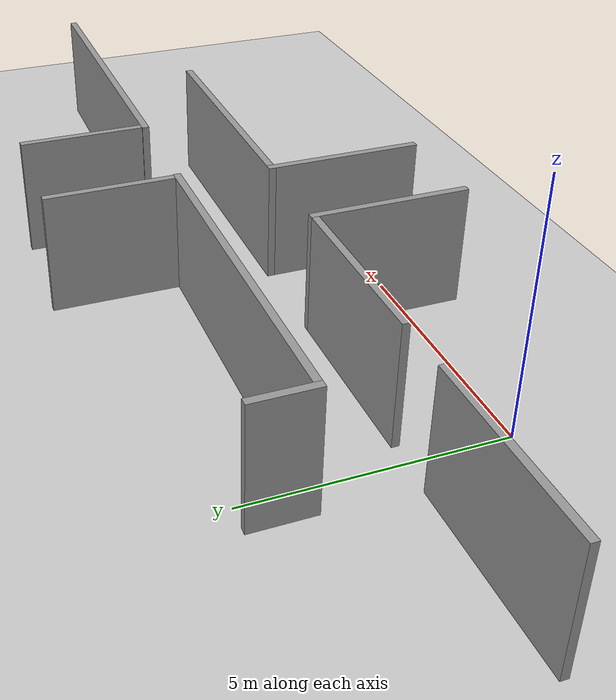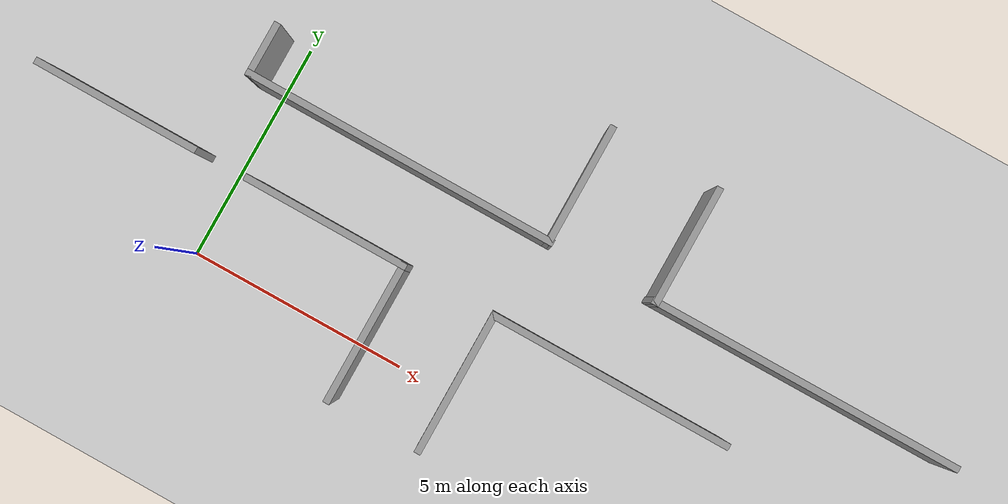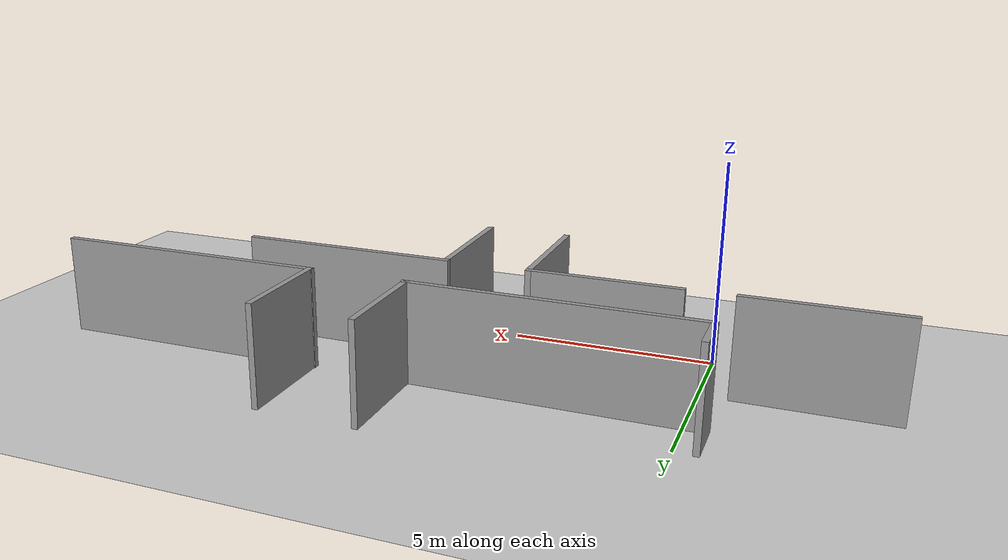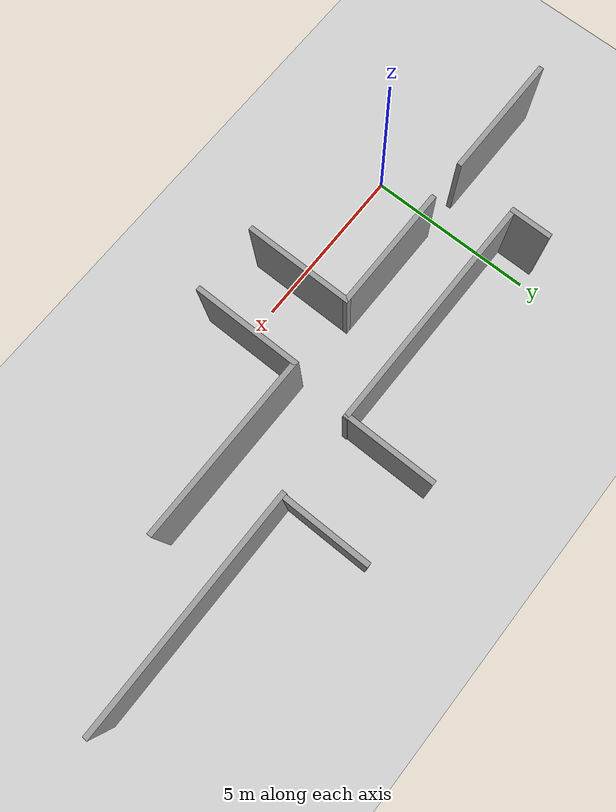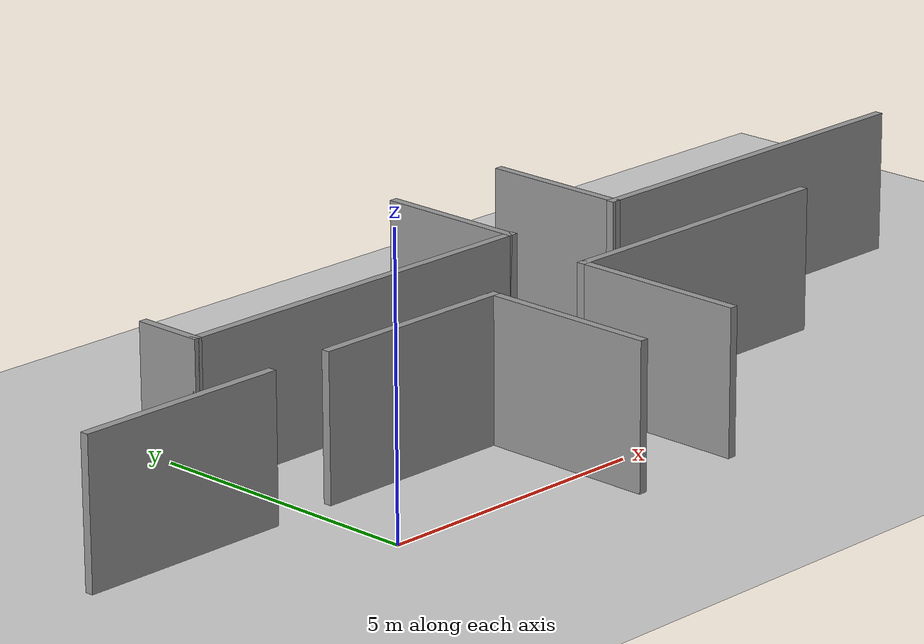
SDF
<sdf version="1.6">
 <world name="default">
  <light name="sun" type="directional">
   <pose>0 0 10 0 -0 0</pose>
   <diffuse>0.8 0.8 0.8 1</diffuse>
   <specular>0.2 0.2 0.2 1</specular>
   <attenuation>
    <range>1000</range>
    <constant>0.9</constant>
    <linear>0.01</linear>
    <quadratic>0.001</quadratic>
   </attenuation>
   <direction>-0.5 0.1 -0.9</direction>
  </light>
  <model name="ground_plane">
   <static>1</static>
   <link name="link">
    <collision name="collision">
     <geometry><plane><normal>0 0 1</normal><size>100 100</size></plane></geometry>
     <surface>
      <contact><collide_bitmask>65535</collide_bitmask></contact>
      <friction><ode><mu>100</mu><mu2>50</mu2></ode></friction>
     </surface>
    </collision>
    <visual name="visual">
     <cast_shadows>0</cast_shadows>
     <geometry><plane><normal>0 0 1</normal><size>100 100</size></plane></geometry>
     <material>
      <script><uri>file://media/materials/scripts/gazebo.material</uri><name>Gazebo/Grey</name></script>
     </material>
    </visual>
   </link>
  </model>
  <gravity>0 0 -9.8</gravity>
  <magnetic_field>6e-06 2.3e-05 -4.2e-05</magnetic_field>
  <atmosphere type="adiabatic"/>
  <physics name="default_physics" default="0" type="ode">
   <max_step_size>0.001</max_step_size>
   <real_time_factor>1</real_time_factor>
   <real_time_update_rate>1000</real_time_update_rate>
  </physics>
  <scene><ambient>0.4 0.4 0.4 1</ambient><background>0.7 0.7 0.7 1</background><shadows>1</shadows></scene>
  <spherical_coordinates>
   <surface_model>EARTH_WGS84</surface_model>
   <latitude_deg>0</latitude_deg>
   <longitude_deg>0</longitude_deg>
   <elevation>0</elevation>
   <heading_deg>0</heading_deg>
  </spherical_coordinates>
  <model name="Untitled">
   <pose>5.73486 2.64635 0 0 -0 0</pose>
   <link name="Wall_0">
    <collision name="Wall_0_Collision">
     <geometry><box><size>3.25 0.15 2.5</size></box></geometry>
     <pose>0 0 1.25 0 -0 0</pose>
    </collision>
    <visual name="Wall_0_Visual">
     <pose>0 0 1.25 0 -0 0</pose>
     <geometry><box><size>3.25 0.15 2.5</size></box></geometry>
     <material>
      <script><uri>file://media/materials/scripts/gazebo.material</uri><name>Gazebo/Grey</name></script>
      <ambient>1 1 1 1</ambient>
     </material>
     <meta><layer>0</layer></meta>
    </visual>
    <pose>-1.61396 -2.23502 0 0 -0 1.5708</pose>
   </link>
   <link name="Wall_11">
    <collision name="Wall_11_Collision">
     <geometry><box><size>2.72697 0.15 2.5</size></box></geometry>
     <pose>0 0 1.25 0 -0 0</pose>
    </collision>
    <visual name="Wall_11_Visual">
     <pose>0 0 1.25 0 -0 0</pose>
     <geometry><box><size>2.72697 0.15 2.5</size></box></geometry>
     <material>
      <script><uri>file://media/materials/scripts/gazebo.material</uri><name>Gazebo/Grey</name></script>
      <ambient>1 1 1 1</ambient>
     </material>
     <meta><layer>0</layer></meta>
    </visual>
    <pose>3.21193 2.46097 0 0 -0 -1.5708</pose>
   </link>
   <link name="Wall_12">
    <collision name="Wall_12_Collision">
     <geometry><box><size>7.04186 0.15 2.5</size></box></geometry>
     <pose>0 0 1.25 0 -0 0</pose>
    </collision>
    <visual name="Wall_12_Visual">
     <pose>0 0 1.25 0 -0 0</pose>
     <geometry><box><size>7.04186 0.15 2.5</size></box></geometry>
     <material>
      <script><uri>file://media/materials/scripts/gazebo.material</uri><name>Gazebo/Grey</name></script>
      <ambient>1 1 1 1</ambient>
     </material>
     <meta><layer>0</layer></meta>
    </visual>
    <pose>6.63472 1.1841 0 0 -0 0.003356</pose>
   </link>
   <link name="Wall_14">
    <collision name="Wall_14_Collision">
     <geometry><box><size>5.5 0.15 2.5</size></box></geometry>
     <pose>0 0 1.25 0 -0 0</pose>
    </collision>
    <visual name="Wall_14_Visual">
     <pose>0 0 1.25 0 -0 0</pose>
     <geometry><box><size>5.5 0.15 2.5</size></box></geometry>
     <material>
      <script><uri>file://media/materials/scripts/gazebo.material</uri><name>Gazebo/Grey</name></script>
      <ambient>1 1 1 1</ambient>
     </material>
     <meta><layer>0</layer></meta>
    </visual>
    <pose>3.15752 -0.668539 0 0 -0 0</pose>
   </link>
   <link name="Wall_16">
    <collision name="Wall_16_Collision">
     <geometry><box><size>3.25 0.15 2.5</size></box></geometry>
     <pose>0 0 1.25 0 -0 0</pose>
    </collision>
    <visual name="Wall_16_Visual">
     <pose>0 0 1.25 0 -0 0</pose>
     <geometry><box><size>3.25 0.15 2.5</size></box></geometry>
     <material>
      <script><uri>file://media/materials/scripts/gazebo.material</uri><name>Gazebo/Grey</name></script>
      <ambient>1 1 1 1</ambient>
     </material>
     <meta><layer>0</layer></meta>
    </visual>
    <pose>0.482524 -2.21854 0 0 -0 -1.5708</pose>
   </link>
   <link name="Wall_2">
    <collision name="Wall_2_Collision">
     <geometry><box><size>3.75 0.15 2.5</size></box></geometry>
     <pose>0 0 1.25 0 -0 0</pose>
    </collision>
    <visual name="Wall_2_Visual">
     <pose>0 0 1.25 0 -0 0</pose>
     <geometry><box><size>3.75 0.15 2.5</size></box></geometry>
     <material>
      <script><uri>file://media/materials/scripts/gazebo.material</uri><name>Gazebo/Grey</name></script>
      <ambient>1 1 1 1</ambient>
     </material>
     <meta><layer>0</layer></meta>
    </visual>
    <pose>-3.41396 -0.68502 0 0 -0 3.14159</pose>
   </link>
   <link name="Wall_4">
    <collision name="Wall_4_Collision">
     <geometry><box><size>3.75 0.15 2.5</size></box></geometry>
     <pose>0 0 1.25 0 -0 0</pose>
    </collision>
    <visual name="Wall_4_Visual">
     <pose>0 0 1.25 0 -0 0</pose>
     <geometry><box><size>3.75 0.15 2.5</size></box></geometry>
     <material>
      <script><uri>file://media/materials/scripts/gazebo.material</uri><name>Gazebo/Grey</name></script>
      <ambient>1 1 1 1</ambient>
     </material>
     <meta><layer>0</layer></meta>
    </visual>
    <pose>-8.28088 -0.700865 0 0 -0 3.14159</pose>
   </link>
   <link name="Wall_6">
    <collision name="Wall_6_Collision">
     <geometry><box><size>7.13245 0.15 2.5</size></box></geometry>
     <pose>0 0 1.25 0 -0 0</pose>
    </collision>
    <visual name="Wall_6_Visual">
     <pose>0 0 1.25 0 -0 0</pose>
     <geometry><box><size>7.13245 0.15 2.5</size></box></geometry>
     <material>
      <script><uri>file://media/materials/scripts/gazebo.material</uri><name>Gazebo/Grey</name></script>
      <ambient>1 1 1 1</ambient>
     </material>
     <meta><layer>0</layer></meta>
    </visual>
    <pose>-2.74631 1.18502 0 0 -0 0</pose>
   </link>
   <link name="Wall_7">
    <collision name="Wall_7_Collision">
     <geometry><box><size>2.75 0.15 2.5</size></box></geometry>
     <pose>0 0 1.25 0 -0 0</pose>
    </collision>
    <visual name="Wall_7_Visual">
     <pose>0 0 1.25 0 -0 0</pose>
     <geometry><box><size>2.75 0.15 2.5</size></box></geometry>
     <material>
      <script><uri>file://media/materials/scripts/gazebo.material</uri><name>Gazebo/Grey</name></script>
      <ambient>1 1 1 1</ambient>
     </material>
     <meta><layer>0</layer></meta>
    </visual>
    <pose>0.721781 2.48502 0 0 -0 1.5708</pose>
   </link>
   <link name="Wall_9">
    <collision name="Wall_9_Collision">
     <geometry><box><size>1.25 0.15 2.5</size></box></geometry>
     <pose>0 0 1.25 0 -0 0</pose>
    </collision>
    <visual name="Wall_9_Visual">
     <pose>0 0 1.25 0 -0 0</pose>
     <geometry><box><size>1.25 0.15 2.5</size></box></geometry>
     <material>
      <script><uri>file://media/materials/scripts/gazebo.material</uri><name>Gazebo/Grey</name></script>
      <ambient>1 1 1 1</ambient>
     </material>
     <meta><layer>0</layer></meta>
    </visual>
    <pose>-6.23754 1.73502 0 0 -0 1.5708</pose>
   </link>
   <static>1</static>
  </model>
 </world>
</sdf>
